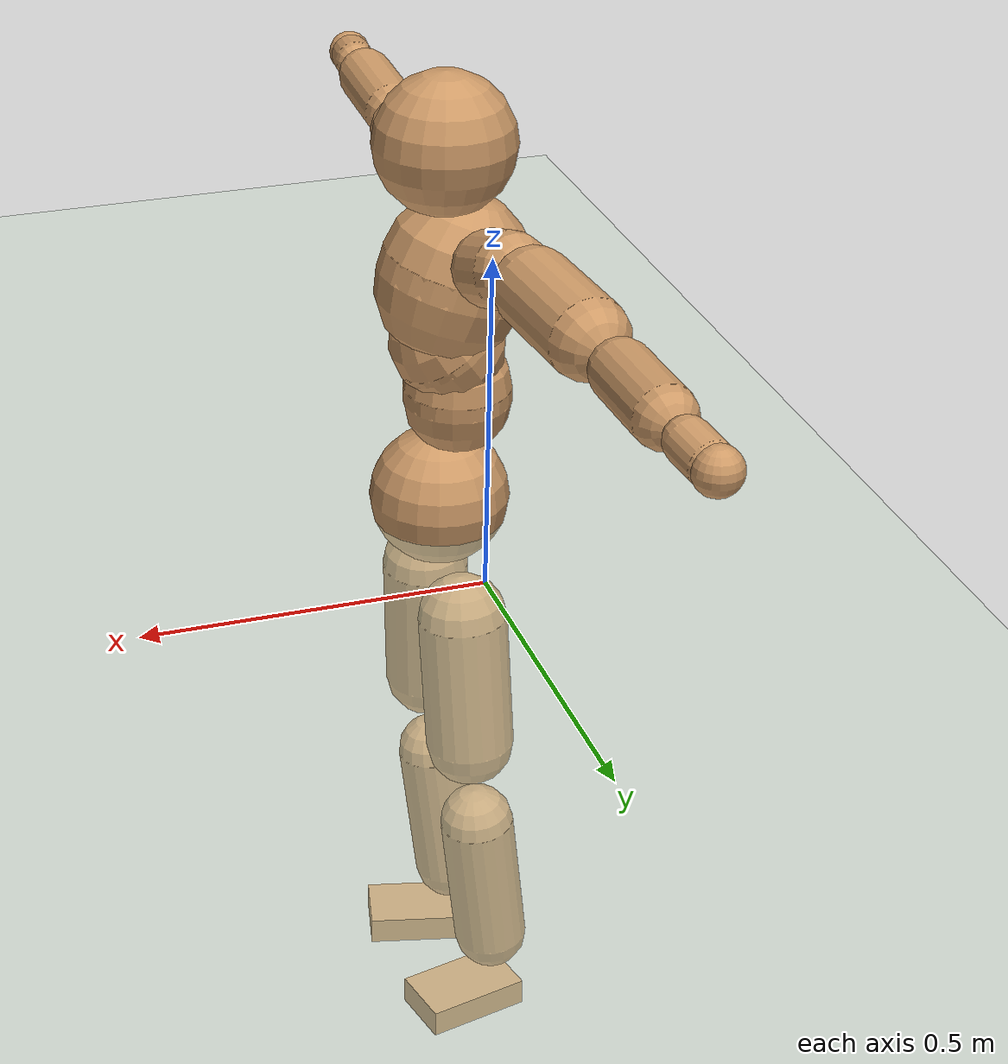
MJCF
<mujoco model="humanoid">
  <compiler coordinate="local"/>
  <default>
    <joint damping="0.0" armature="0.01" stiffness="0.0" limited="true"/>
    <geom conaffinity="1" condim="3" contype="7" margin="0.001" rgba="0.8 0.6 .4 1"/>
  </default>
  <asset>
    <texture type="skybox" builtin="gradient" rgb1=".4 .5 .6" rgb2="0 0 0" width="100" height="100"/>
    <texture builtin="flat" height="1278" mark="cross" markrgb="1 1 1" name="texgeom" random="0.01" rgb1="0.8 0.6 0.4" rgb2="0.8 0.6 0.4" type="cube" width="127"/>
    <texture builtin="checker" height="100" name="texplane" rgb1="0 0 0" rgb2="0.8 0.8 0.8" type="2d" width="100"/>
    <material name="MatPlane" reflectance="0.5" shininess="1" specular="1" texrepeat="60 60" texture="texplane"/>
    <material name="geom" texture="texgeom" texuniform="true"/>
  </asset>
  <worldbody>
    <light cutoff="100" diffuse="1 1 1" dir="-0 0 -1.3" directional="true" exponent="1" pos="0 0 1.3" specular=".1 .1 .1"/>
    <geom conaffinity="1" condim="3" name="floor" pos="0 0 0" rgba="0.8 0.9 0.8 1" size="100 100 .2" type="plane" material="MatPlane"/>
    <body name="Pelvis" pos="-0.0003 -0.2127 0.0324">
      <freejoint name="Pelvis"/>
      <geom type="sphere" contype="1" conaffinity="1" density="500" size="0.1046" pos="0.0000 0.0000 0.0000" name="Pelvis"/>
      <body name="L_Hip" pos="-0.007 0.0809 -0.094">
        <joint name="L_Hip_x" type="hinge" pos="0 0 0" axis="1 0 0" stiffness="800" damping="80" armature="0.02" range="-180.0000 180.0000"/>
        <joint name="L_Hip_y" type="hinge" pos="0 0 0" axis="0 1 0" stiffness="800" damping="80" armature="0.02" range="-180.0000 180.0000"/>
        <joint name="L_Hip_z" type="hinge" pos="0 0 0" axis="0 0 1" stiffness="800" damping="80" armature="0.02" range="-180.0000 180.0000"/>
        <geom type="capsule" contype="1" conaffinity="1" density="500" fromto="-0.0035 0.0049 -0.0729 -0.0141 0.0196 -0.2916" size="0.0669" name="L_Hip"/>
        <body name="L_Knee" pos="-0.0176 0.0245 -0.3645">
          <joint name="L_Knee_x" type="hinge" pos="0 0 0" axis="1 0 0" stiffness="800" damping="80" armature="0.02" range="-180.0000 180.0000"/>
          <joint name="L_Knee_y" type="hinge" pos="0 0 0" axis="0 1 0" stiffness="800" damping="80" armature="0.02" range="-180.0000 180.0000"/>
          <joint name="L_Knee_z" type="hinge" pos="0 0 0" axis="0 0 1" stiffness="800" damping="80" armature="0.02" range="-180.0000 180.0000"/>
          <geom type="capsule" contype="1" conaffinity="1" density="500" fromto="-0.0099 -0.0023 -0.0778 -0.0398 -0.0093 -0.3110" size="0.0569" name="L_Knee"/>
          <body name="L_Ankle" pos="-0.0497 -0.0116 -0.3888">
            <joint name="L_Ankle_x" type="hinge" pos="0 0 0" axis="1 0 0" stiffness="800" damping="80" armature="0.02" range="-180.0000 180.0000"/>
            <joint name="L_Ankle_y" type="hinge" pos="0 0 0" axis="0 1 0" stiffness="800" damping="80" armature="0.02" range="-180.0000 180.0000"/>
            <joint name="L_Ankle_z" type="hinge" pos="0 0 0" axis="0 0 1" stiffness="800" damping="80" armature="0.02" range="-180.0000 180.0000"/>
            <geom type="box" contype="1" conaffinity="1" density="500" pos="0.0571 0.0128 -0.0280" size="0.0818 0.0492 0.0221" quat="0.9940 0.0000 0.0000 0.1097" name="L_Ankle"/>
            <body name="L_Toe" pos="0.1142 0.0255 -0.0559">
              <joint name="L_Toe_x" type="hinge" pos="0 0 0" axis="1 0 0" stiffness="500" damping="50" armature="0.02" range="-180.0000 180.0000"/>
              <joint name="L_Toe_y" type="hinge" pos="0 0 0" axis="0 1 0" stiffness="500" damping="50" armature="0.02" range="-180.0000 180.0000"/>
              <joint name="L_Toe_z" type="hinge" pos="0 0 0" axis="0 0 1" stiffness="500" damping="50" armature="0.02" range="-180.0000 180.0000"/>
              <geom type="box" contype="1" conaffinity="1" density="500" pos="0.0000 0.0000 0.0272" size="0.0011 0.0025 0.0011" quat="0.9932 0.0000 0.0000 0.1160" name="L_Toe"/>
            </body>
          </body>
        </body>
      </body>
      <body name="R_Hip" pos="-0.0028 -0.0786 -0.0944">
        <joint name="R_Hip_x" type="hinge" pos="0 0 0" axis="1 0 0" stiffness="800" damping="80" armature="0.02" range="-180.0000 180.0000"/>
        <joint name="R_Hip_y" type="hinge" pos="0 0 0" axis="0 1 0" stiffness="800" damping="80" armature="0.02" range="-180.0000 180.0000"/>
        <joint name="R_Hip_z" type="hinge" pos="0 0 0" axis="0 0 1" stiffness="800" damping="80" armature="0.02" range="-180.0000 180.0000"/>
        <geom type="capsule" contype="1" conaffinity="1" density="500" fromto="-0.0039 -0.0065 -0.0737 -0.0156 -0.0260 -0.2946" size="0.0662" name="R_Hip"/>
        <body name="R_Knee" pos="-0.0195 -0.0326 -0.3683">
          <joint name="R_Knee_x" type="hinge" pos="0 0 0" axis="1 0 0" stiffness="800" damping="80" armature="0.02" range="-180.0000 180.0000"/>
          <joint name="R_Knee_y" type="hinge" pos="0 0 0" axis="0 1 0" stiffness="800" damping="80" armature="0.02" range="-180.0000 180.0000"/>
          <joint name="R_Knee_z" type="hinge" pos="0 0 0" axis="0 0 1" stiffness="800" damping="80" armature="0.02" range="-180.0000 180.0000"/>
          <geom type="capsule" contype="1" conaffinity="1" density="500" fromto="-0.0095 0.0028 -0.0780 -0.0381 0.0114 -0.3121" size="0.0569" name="R_Knee"/>
          <body name="R_Ankle" pos="-0.0476 0.0142 -0.3902">
            <joint name="R_Ankle_x" type="hinge" pos="0 0 0" axis="1 0 0" stiffness="800" damping="80" armature="0.02" range="-180.0000 180.0000"/>
            <joint name="R_Ankle_y" type="hinge" pos="0 0 0" axis="0 1 0" stiffness="800" damping="80" armature="0.02" range="-180.0000 180.0000"/>
            <joint name="R_Ankle_z" type="hinge" pos="0 0 0" axis="0 0 1" stiffness="800" damping="80" armature="0.02" range="-180.0000 180.0000"/>
            <geom type="box" contype="1" conaffinity="1" density="500" pos="0.0596 -0.0138 -0.0246" size="0.0836 0.0487 0.0221" quat="0.9935 0.0000 0.0000 -0.1135" name="R_Ankle"/>
            <body name="R_Toe" pos="0.1193 -0.0276 -0.0492">
              <joint name="R_Toe_x" type="hinge" pos="0 0 0" axis="1 0 0" stiffness="500" damping="50" armature="0.02" range="-180.0000 180.0000"/>
              <joint name="R_Toe_y" type="hinge" pos="0 0 0" axis="0 1 0" stiffness="500" damping="50" armature="0.02" range="-180.0000 180.0000"/>
              <joint name="R_Toe_z" type="hinge" pos="0 0 0" axis="0 0 1" stiffness="500" damping="50" armature="0.02" range="-180.0000 180.0000"/>
              <geom type="box" contype="1" conaffinity="1" density="500" pos="0.0000 0.0000 0.0255" size="0.001 0.0025 0.0011" quat="0.9946 0.0000 0.0000 -0.1039" name="R_Toe"/>
            </body>
          </body>
        </body>
      </body>
      <body name="Torso" pos="-0.0257 -0.0015 0.1073">
        <joint name="Torso_x" type="hinge" pos="0 0 0" axis="1 0 0" stiffness="1000" damping="100" armature="0.02" range="-180.0000 180.0000"/>
        <joint name="Torso_y" type="hinge" pos="0 0 0" axis="0 1 0" stiffness="1000" damping="100" armature="0.02" range="-180.0000 180.0000"/>
        <joint name="Torso_z" type="hinge" pos="0 0 0" axis="0 0 1" stiffness="1000" damping="100" armature="0.02" range="-180.0000 180.0000"/>
        <geom type="capsule" contype="1" conaffinity="1" density="500" fromto="0.0002 0.0015 0.0692 0.0001 0.0010 0.0461" size="0.0802" name="Torso"/>
        <body name="Spine" pos="0.0003 0.0025 0.1153">
          <joint name="Spine_x" type="hinge" pos="0 0 0" axis="1 0 0" stiffness="1000" damping="100" armature="0.02" range="-180.0000 180.0000"/>
          <joint name="Spine_y" type="hinge" pos="0 0 0" axis="0 1 0" stiffness="1000" damping="100" armature="0.02" range="-180.0000 180.0000"/>
          <joint name="Spine_z" type="hinge" pos="0 0 0" axis="0 0 1" stiffness="1000" damping="100" armature="0.02" range="-180.0000 180.0000"/>
          <geom type="capsule" contype="1" conaffinity="1" density="500" fromto="0.0210 0.0011 0.0298 0.0140 0.0008 0.0199" size="0.0824" name="Spine"/>
          <body name="Chest" pos="0.0351 0.0019 0.0497">
            <joint name="Chest_x" type="hinge" pos="0 0 0" axis="1 0 0" stiffness="1000" damping="100" armature="0.02" range="-180.0000 180.0000"/>
            <joint name="Chest_y" type="hinge" pos="0 0 0" axis="0 1 0" stiffness="1000" damping="100" armature="0.02" range="-180.0000 180.0000"/>
            <joint name="Chest_z" type="hinge" pos="0 0 0" axis="0 0 1" stiffness="1000" damping="100" armature="0.02" range="-180.0000 180.0000"/>
            <geom type="capsule" contype="1" conaffinity="1" density="500" fromto="-0.0299 -0.0004 0.0943 -0.0200 -0.0003 0.0628" size="0.1091" name="Chest"/>
            <body name="Neck" pos="-0.0613 -0.0007 0.2204">
              <joint name="Neck_x" type="hinge" pos="0 0 0" axis="1 0 0" stiffness="500" damping="50" armature="0.02" range="-180.0000 180.0000"/>
              <joint name="Neck_y" type="hinge" pos="0 0 0" axis="0 1 0" stiffness="500" damping="50" armature="0.02" range="-180.0000 180.0000"/>
              <joint name="Neck_z" type="hinge" pos="0 0 0" axis="0 0 1" stiffness="500" damping="50" armature="0.02" range="-180.0000 180.0000"/>
              <geom type="capsule" contype="1" conaffinity="1" density="500" fromto="0.0103 0.0003 0.0120 0.0410 0.0011 0.0482" size="0.0442" name="Neck"/>
              <body name="Head" pos="0.0513 0.0013 0.0602">
                <joint name="Head_x" type="hinge" pos="0 0 0" axis="1 0 0" stiffness="500" damping="50" armature="0.02" range="-180.0000 180.0000"/>
                <joint name="Head_y" type="hinge" pos="0 0 0" axis="0 1 0" stiffness="500" damping="50" armature="0.02" range="-180.0000 180.0000"/>
                <joint name="Head_z" type="hinge" pos="0 0 0" axis="0 0 1" stiffness="500" damping="50" armature="0.02" range="-180.0000 180.0000"/>
                <geom type="sphere" contype="1" conaffinity="1" density="500" size="0.1030" pos="0.0000 0.0000 0.0000" name="Head"/>
              </body>
            </body>
            <body name="L_Thorax" pos="-0.0419 0.0857 0.1263">
              <joint name="L_Thorax_x" type="hinge" pos="0 0 0" axis="1 0 0" stiffness="500" damping="50" armature="0.02" range="-180.0000 180.0000"/>
              <joint name="L_Thorax_y" type="hinge" pos="0 0 0" axis="0 1 0" stiffness="500" damping="50" armature="0.02" range="-180.0000 180.0000"/>
              <joint name="L_Thorax_z" type="hinge" pos="0 0 0" axis="0 0 1" stiffness="500" damping="50" armature="0.02" range="-180.0000 180.0000"/>
              <geom type="capsule" contype="1" conaffinity="1" density="500" fromto="-0.0026 0.0187 0.0064 -0.0104 0.0749 0.0255" size="0.0557" name="L_Thorax"/>
              <body name="L_Shoulder" pos="-0.013 0.0936 0.0318">
                <joint name="L_Shoulder_x" type="hinge" pos="0 0 0" axis="1 0 0" stiffness="500" damping="50" armature="0.02" range="-720.0000 720.0000"/>
                <joint name="L_Shoulder_y" type="hinge" pos="0 0 0" axis="0 1 0" stiffness="500" damping="50" armature="0.02" range="-720.0000 720.0000"/>
                <joint name="L_Shoulder_z" type="hinge" pos="0 0 0" axis="0 0 1" stiffness="500" damping="50" armature="0.02" range="-720.0000 720.0000"/>
                <geom type="capsule" contype="1" conaffinity="1" density="500" fromto="-0.0059 0.0516 -0.0017 -0.0234 0.2066 -0.0069" size="0.0576" name="L_Shoulder"/>
                <body name="L_Elbow" pos="-0.0293 0.2582 -0.0086">
                  <joint name="L_Elbow_x" type="hinge" pos="0 0 0" axis="1 0 0" stiffness="500" damping="50" armature="0.02" range="-720.0000 720.0000"/>
                  <joint name="L_Elbow_y" type="hinge" pos="0 0 0" axis="0 1 0" stiffness="500" damping="50" armature="0.02" range="-720.0000 720.0000"/>
                  <joint name="L_Elbow_z" type="hinge" pos="0 0 0" axis="0 0 1" stiffness="500" damping="50" armature="0.02" range="-720.0000 720.0000"/>
                  <geom type="capsule" contype="1" conaffinity="1" density="500" fromto="0.0002 0.0473 0.0020 0.0010 0.1893 0.0079" size="0.0431" name="L_Elbow"/>
                  <body name="L_Wrist" pos="0.0012 0.2367 0.0098">
                    <joint name="L_Wrist_x" type="hinge" pos="0 0 0" axis="1 0 0" stiffness="300" damping="30" armature="0.02" range="-180.0000 180.0000"/>
                    <joint name="L_Wrist_y" type="hinge" pos="0 0 0" axis="0 1 0" stiffness="300" damping="30" armature="0.02" range="-180.0000 180.0000"/>
                    <joint name="L_Wrist_z" type="hinge" pos="0 0 0" axis="0 0 1" stiffness="300" damping="30" armature="0.02" range="-180.0000 180.0000"/>
                    <geom type="capsule" contype="1" conaffinity="1" density="500" fromto="-0.0026 0.0164 -0.0019 -0.0105 0.0655 -0.0077" size="0.0315" name="L_Wrist"/>
                    <body name="L_Hand" pos="-0.0132 0.0818 -0.0097">
                      <joint name="L_Hand_x" type="hinge" pos="0 0 0" axis="1 0 0" stiffness="300" damping="30" armature="0.02" range="-180.0000 180.0000"/>
                      <joint name="L_Hand_y" type="hinge" pos="0 0 0" axis="0 1 0" stiffness="300" damping="30" armature="0.02" range="-180.0000 180.0000"/>
                      <joint name="L_Hand_z" type="hinge" pos="0 0 0" axis="0 0 1" stiffness="300" damping="30" armature="0.02" range="-180.0000 180.0000"/>
                      <geom type="sphere" contype="1" conaffinity="1" density="500" size="0.0330" pos="0.0000 0.0000 0.0000" name="L_Hand"/>
                    </body>
                  </body>
                </body>
              </body>
            </body>
            <body name="R_Thorax" pos="-0.0465 -0.0871 0.1246">
              <joint name="R_Thorax_x" type="hinge" pos="0 0 0" axis="1 0 0" stiffness="500" damping="50" armature="0.02" range="-180.0000 180.0000"/>
              <joint name="R_Thorax_y" type="hinge" pos="0 0 0" axis="0 1 0" stiffness="500" damping="50" armature="0.02" range="-180.0000 180.0000"/>
              <joint name="R_Thorax_z" type="hinge" pos="0 0 0" axis="0 0 1" stiffness="500" damping="50" armature="0.02" range="-180.0000 180.0000"/>
              <geom type="capsule" contype="1" conaffinity="1" density="500" fromto="-0.0026 -0.0192 0.0070 -0.0106 -0.0768 0.0281" size="0.0548" name="R_Thorax"/>
              <body name="R_Shoulder" pos="-0.0132 -0.096 0.0352">
                <joint name="R_Shoulder_x" type="hinge" pos="0 0 0" axis="1 0 0" stiffness="500" damping="50" armature="0.02" range="-720.0000 720.0000"/>
                <joint name="R_Shoulder_y" type="hinge" pos="0 0 0" axis="0 1 0" stiffness="500" damping="50" armature="0.02" range="-720.0000 720.0000"/>
                <joint name="R_Shoulder_z" type="hinge" pos="0 0 0" axis="0 0 1" stiffness="500" damping="50" armature="0.02" range="-720.0000 720.0000"/>
                <geom type="capsule" contype="1" conaffinity="1" density="500" fromto="-0.0046 -0.0505 -0.0029 -0.0182 -0.2019 -0.0116" size="0.0593" name="R_Shoulder"/>
                <body name="R_Elbow" pos="-0.0228 -0.2523 -0.0145">
                  <joint name="R_Elbow_x" type="hinge" pos="0 0 0" axis="1 0 0" stiffness="500" damping="50" armature="0.02" range="-720.0000 720.0000"/>
                  <joint name="R_Elbow_y" type="hinge" pos="0 0 0" axis="0 1 0" stiffness="500" damping="50" armature="0.02" range="-720.0000 720.0000"/>
                  <joint name="R_Elbow_z" type="hinge" pos="0 0 0" axis="0 0 1" stiffness="500" damping="50" armature="0.02" range="-720.0000 720.0000"/>
                  <geom type="capsule" contype="1" conaffinity="1" density="500" fromto="-0.0001 -0.0491 0.0023 -0.0006 -0.1966 0.0094" size="0.0439" name="R_Elbow"/>
                  <body name="R_Wrist" pos="-0.0007 -0.2457 0.0117">
                    <joint name="R_Wrist_x" type="hinge" pos="0 0 0" axis="1 0 0" stiffness="300" damping="30" armature="0.02" range="-180.0000 180.0000"/>
                    <joint name="R_Wrist_y" type="hinge" pos="0 0 0" axis="0 1 0" stiffness="300" damping="30" armature="0.02" range="-180.0000 180.0000"/>
                    <joint name="R_Wrist_z" type="hinge" pos="0 0 0" axis="0 0 1" stiffness="300" damping="30" armature="0.02" range="-180.0000 180.0000"/>
                    <geom type="capsule" contype="1" conaffinity="1" density="500" fromto="-0.0022 -0.0167 -0.0015 -0.0088 -0.0666 -0.0061" size="0.0325" name="R_Wrist"/>
                    <body name="R_Hand" pos="-0.011 -0.0833 -0.0076">
                      <joint name="R_Hand_x" type="hinge" pos="0 0 0" axis="1 0 0" stiffness="300" damping="30" armature="0.02" range="-180.0000 180.0000"/>
                      <joint name="R_Hand_y" type="hinge" pos="0 0 0" axis="0 1 0" stiffness="300" damping="30" armature="0.02" range="-180.0000 180.0000"/>
                      <joint name="R_Hand_z" type="hinge" pos="0 0 0" axis="0 0 1" stiffness="300" damping="30" armature="0.02" range="-180.0000 180.0000"/>
                      <geom type="sphere" contype="1" conaffinity="1" density="500" size="0.0337" pos="0.0000 0.0000 0.0000" name="R_Hand"/>
                    </body>
                  </body>
                </body>
              </body>
            </body>
          </body>
        </body>
      </body>
    </body>
  </worldbody>
  <actuator>
    <motor name="L_Hip_x" joint="L_Hip_x" gear="500"/>
    <motor name="L_Hip_y" joint="L_Hip_y" gear="500"/>
    <motor name="L_Hip_z" joint="L_Hip_z" gear="500"/>
    <motor name="L_Knee_x" joint="L_Knee_x" gear="500"/>
    <motor name="L_Knee_y" joint="L_Knee_y" gear="500"/>
    <motor name="L_Knee_z" joint="L_Knee_z" gear="500"/>
    <motor name="L_Ankle_x" joint="L_Ankle_x" gear="500"/>
    <motor name="L_Ankle_y" joint="L_Ankle_y" gear="500"/>
    <motor name="L_Ankle_z" joint="L_Ankle_z" gear="500"/>
    <motor name="L_Toe_x" joint="L_Toe_x" gear="500"/>
    <motor name="L_Toe_y" joint="L_Toe_y" gear="500"/>
    <motor name="L_Toe_z" joint="L_Toe_z" gear="500"/>
    <motor name="R_Hip_x" joint="R_Hip_x" gear="500"/>
    <motor name="R_Hip_y" joint="R_Hip_y" gear="500"/>
    <motor name="R_Hip_z" joint="R_Hip_z" gear="500"/>
    <motor name="R_Knee_x" joint="R_Knee_x" gear="500"/>
    <motor name="R_Knee_y" joint="R_Knee_y" gear="500"/>
    <motor name="R_Knee_z" joint="R_Knee_z" gear="500"/>
    <motor name="R_Ankle_x" joint="R_Ankle_x" gear="500"/>
    <motor name="R_Ankle_y" joint="R_Ankle_y" gear="500"/>
    <motor name="R_Ankle_z" joint="R_Ankle_z" gear="500"/>
    <motor name="R_Toe_x" joint="R_Toe_x" gear="500"/>
    <motor name="R_Toe_y" joint="R_Toe_y" gear="500"/>
    <motor name="R_Toe_z" joint="R_Toe_z" gear="500"/>
    <motor name="Torso_x" joint="Torso_x" gear="500"/>
    <motor name="Torso_y" joint="Torso_y" gear="500"/>
    <motor name="Torso_z" joint="Torso_z" gear="500"/>
    <motor name="Spine_x" joint="Spine_x" gear="500"/>
    <motor name="Spine_y" joint="Spine_y" gear="500"/>
    <motor name="Spine_z" joint="Spine_z" gear="500"/>
    <motor name="Chest_x" joint="Chest_x" gear="500"/>
    <motor name="Chest_y" joint="Chest_y" gear="500"/>
    <motor name="Chest_z" joint="Chest_z" gear="500"/>
    <motor name="Neck_x" joint="Neck_x" gear="500"/>
    <motor name="Neck_y" joint="Neck_y" gear="500"/>
    <motor name="Neck_z" joint="Neck_z" gear="500"/>
    <motor name="Head_x" joint="Head_x" gear="500"/>
    <motor name="Head_y" joint="Head_y" gear="500"/>
    <motor name="Head_z" joint="Head_z" gear="500"/>
    <motor name="L_Thorax_x" joint="L_Thorax_x" gear="500"/>
    <motor name="L_Thorax_y" joint="L_Thorax_y" gear="500"/>
    <motor name="L_Thorax_z" joint="L_Thorax_z" gear="500"/>
    <motor name="L_Shoulder_x" joint="L_Shoulder_x" gear="500"/>
    <motor name="L_Shoulder_y" joint="L_Shoulder_y" gear="500"/>
    <motor name="L_Shoulder_z" joint="L_Shoulder_z" gear="500"/>
    <motor name="L_Elbow_x" joint="L_Elbow_x" gear="500"/>
    <motor name="L_Elbow_y" joint="L_Elbow_y" gear="500"/>
    <motor name="L_Elbow_z" joint="L_Elbow_z" gear="500"/>
    <motor name="L_Wrist_x" joint="L_Wrist_x" gear="500"/>
    <motor name="L_Wrist_y" joint="L_Wrist_y" gear="500"/>
    <motor name="L_Wrist_z" joint="L_Wrist_z" gear="500"/>
    <motor name="L_Hand_x" joint="L_Hand_x" gear="500"/>
    <motor name="L_Hand_y" joint="L_Hand_y" gear="500"/>
    <motor name="L_Hand_z" joint="L_Hand_z" gear="500"/>
    <motor name="R_Thorax_x" joint="R_Thorax_x" gear="500"/>
    <motor name="R_Thorax_y" joint="R_Thorax_y" gear="500"/>
    <motor name="R_Thorax_z" joint="R_Thorax_z" gear="500"/>
    <motor name="R_Shoulder_x" joint="R_Shoulder_x" gear="500"/>
    <motor name="R_Shoulder_y" joint="R_Shoulder_y" gear="500"/>
    <motor name="R_Shoulder_z" joint="R_Shoulder_z" gear="500"/>
    <motor name="R_Elbow_x" joint="R_Elbow_x" gear="500"/>
    <motor name="R_Elbow_y" joint="R_Elbow_y" gear="500"/>
    <motor name="R_Elbow_z" joint="R_Elbow_z" gear="500"/>
    <motor name="R_Wrist_x" joint="R_Wrist_x" gear="500"/>
    <motor name="R_Wrist_y" joint="R_Wrist_y" gear="500"/>
    <motor name="R_Wrist_z" joint="R_Wrist_z" gear="500"/>
    <motor name="R_Hand_x" joint="R_Hand_x" gear="500"/>
    <motor name="R_Hand_y" joint="R_Hand_y" gear="500"/>
    <motor name="R_Hand_z" joint="R_Hand_z" gear="500"/>
  </actuator>
  <contact>
    <exclude body1="Torso" body2="Chest"/>
    <exclude body1="Head" body2="Chest"/>
    <exclude body1="R_Knee" body2="R_Toe"/>
    <exclude body1="R_Knee" body2="L_Ankle"/>
    <exclude body1="R_Knee" body2="L_Toe"/>
    <exclude body1="L_Knee" body2="L_Toe"/>
    <exclude body1="L_Knee" body2="R_Ankle"/>
    <exclude body1="L_Knee" body2="R_Toe"/>
    <exclude body1="L_Shoulder" body2="Chest"/>
    <exclude body1="R_Shoulder" body2="Chest"/>
  </contact>
  <sensor/>
  <size njmax="700" nconmax="700"/>
</mujoco>
